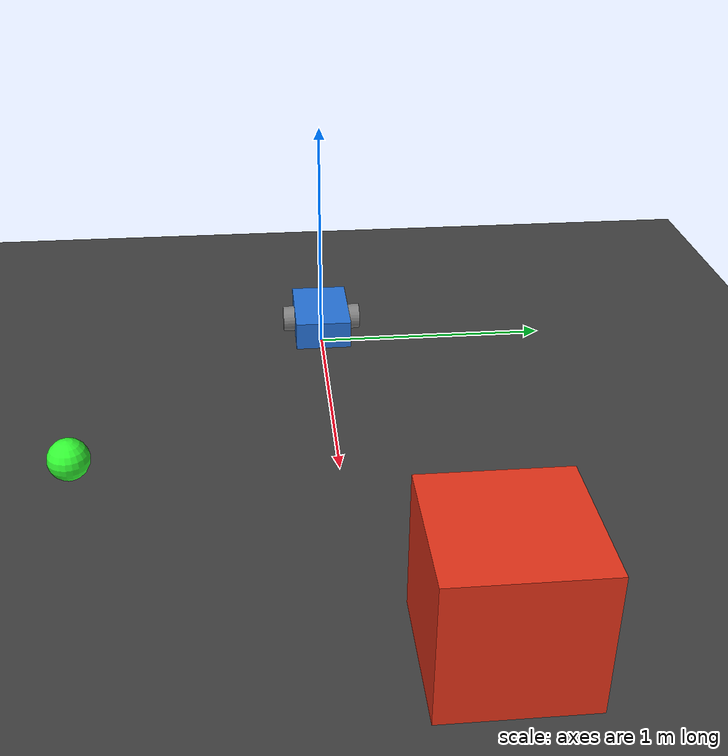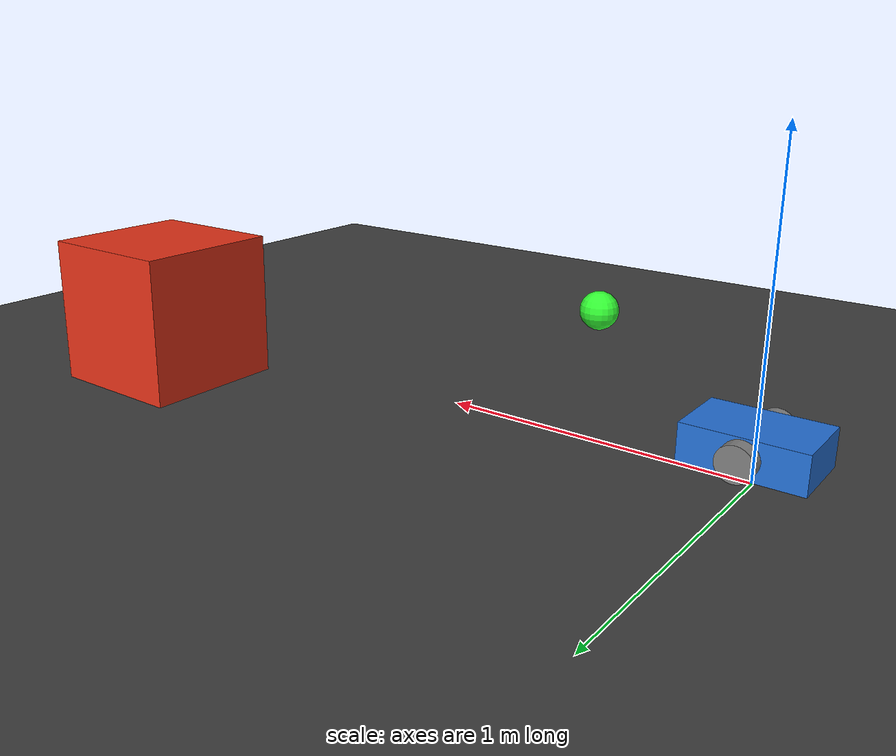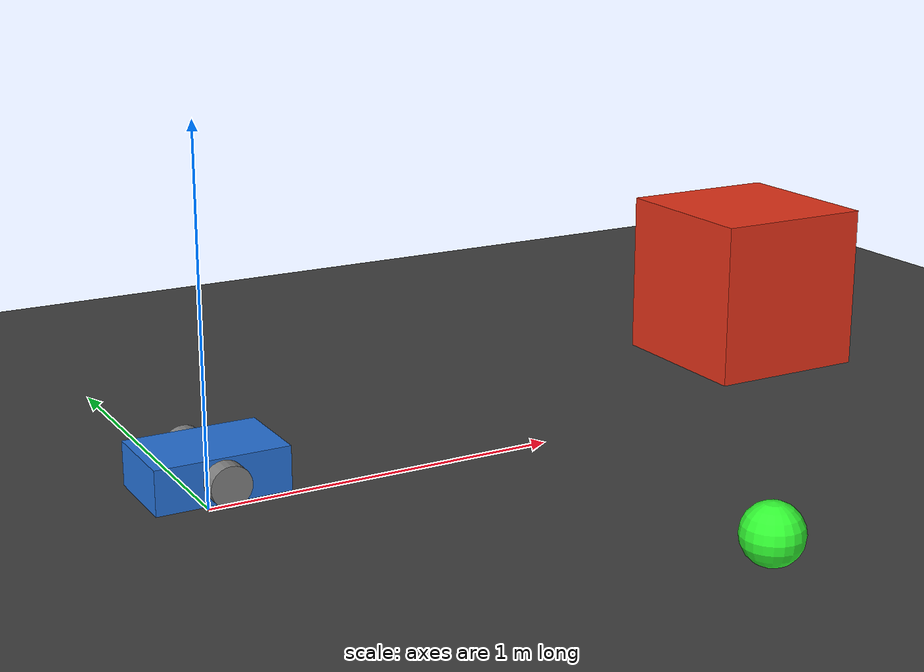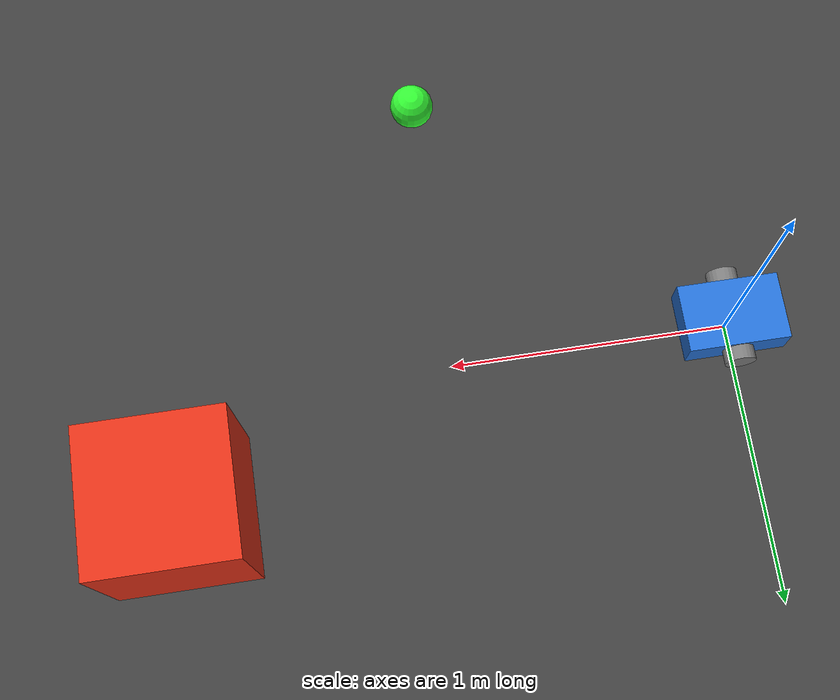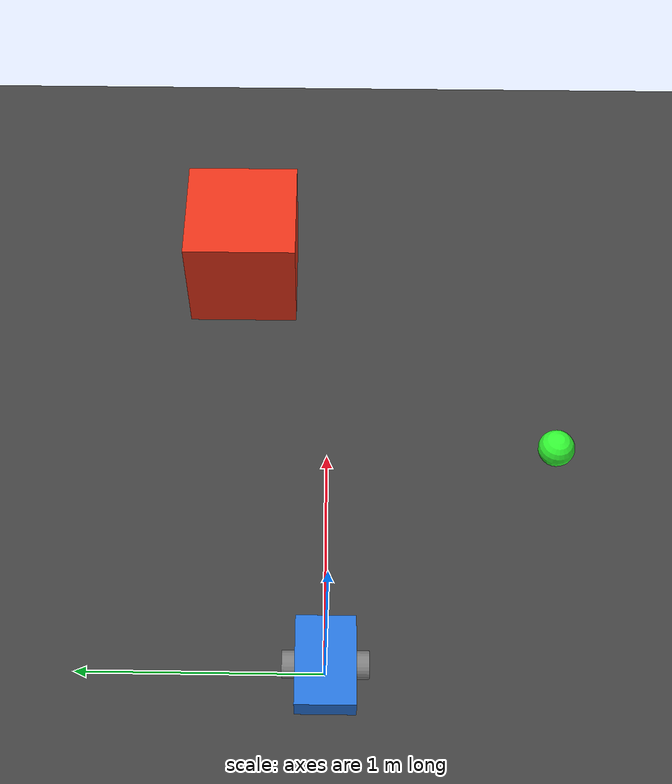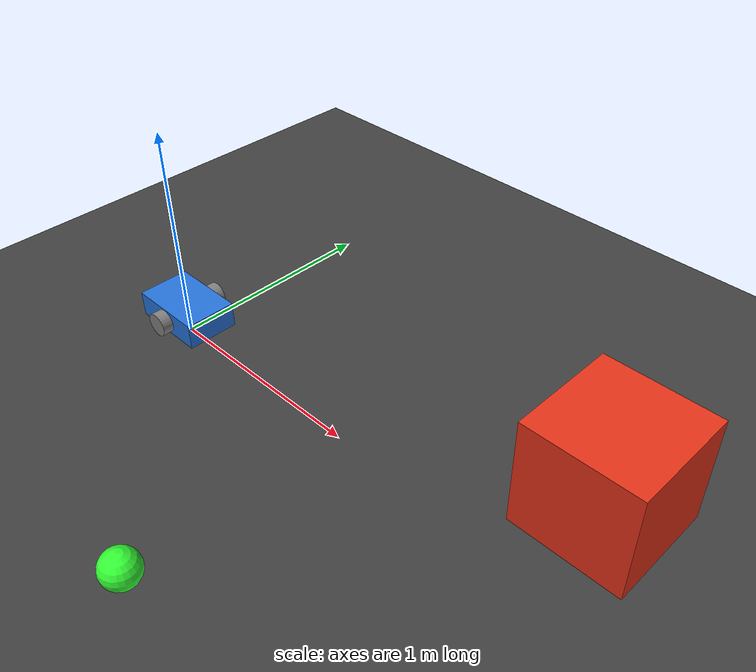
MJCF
<mujoco model="viewer_car">
<option timestep="0.01"/>
<worldbody>
  <light pos="0 0 5"/>
  <geom name="floor" type="plane" size="10 10 .1" rgba=".25 .25 .25 1"/>
  <camera name="overview" pos="4 -6 4" xyaxes=".83 .55 0 -.3 .45 .84"/>
  <body name="base" pos="0 0 .12">
    <freejoint/>
    <geom name="chassis" type="box" size=".18 .12 .06" mass="1.2" rgba=".15 .45 .85 1"/>
    <body pos="0 .145 0"><joint name="left_joint" type="hinge" axis="0 1 0"/>
      <geom type="cylinder" size=".055 .025" euler="90 0 0" mass=".15"/></body>
    <body pos="0 -.145 0"><joint name="right_joint" type="hinge" axis="0 1 0"/>
      <geom type="cylinder" size=".055 .025" euler="90 0 0" mass=".15"/></body>
  </body>
  <body name="obstacle" pos="2 .4 .25"><geom type="box" size=".25 .25 .25" rgba=".9 .2 .1 1"/></body>
  <body name="marker" mocap="true" pos="1 -1 .1"><geom type="sphere" size=".08" rgba=".2 1 .2 1"/></body>
</worldbody>
<actuator>
  <velocity joint="left_joint" kv="2" ctrlrange="-20 20"/>
  <velocity joint="right_joint" kv="2" ctrlrange="-20 20"/>
</actuator>
<sensor>
  <framepos objtype="body" objname="base"/>
  <jointvel joint="left_joint"/>
  <jointvel joint="right_joint"/>
</sensor>
</mujoco>
